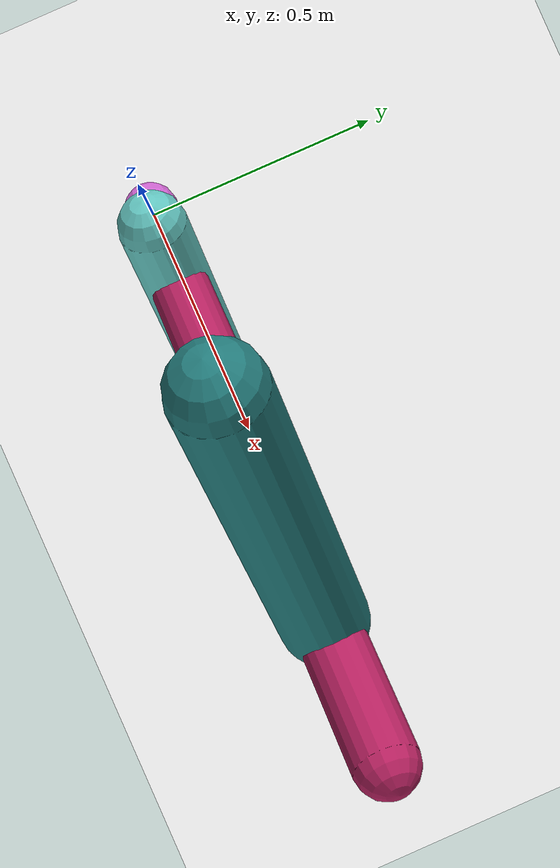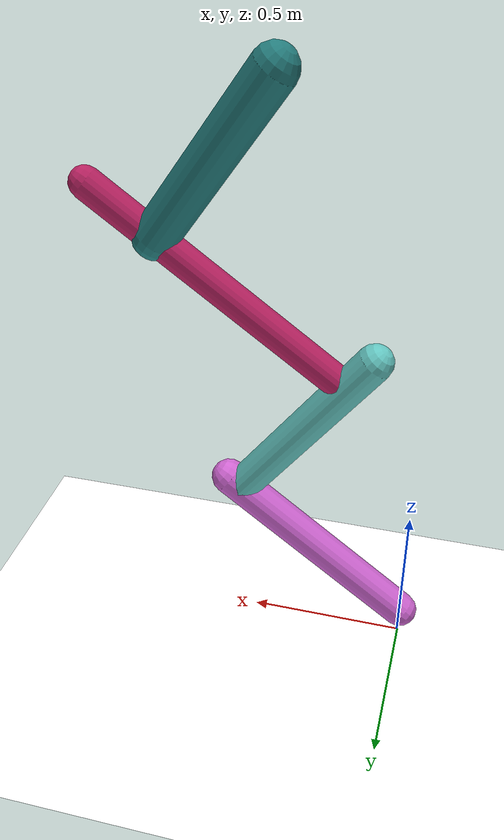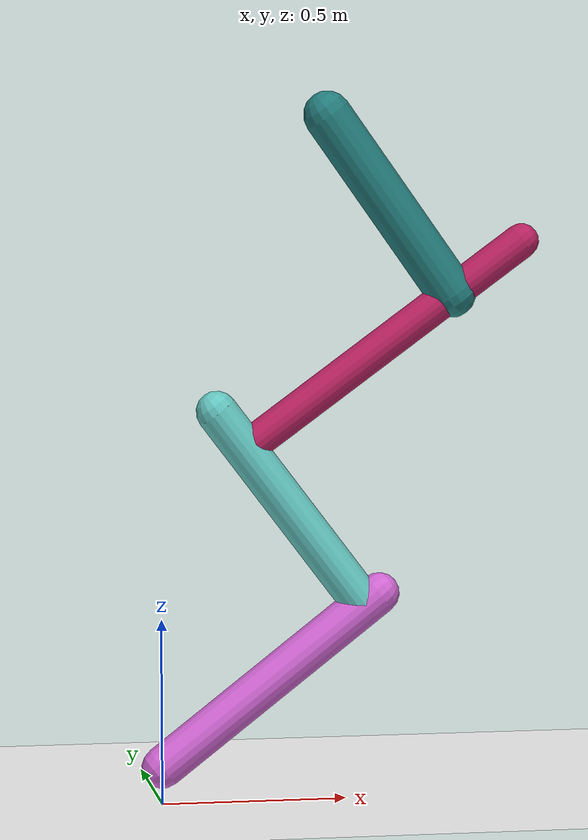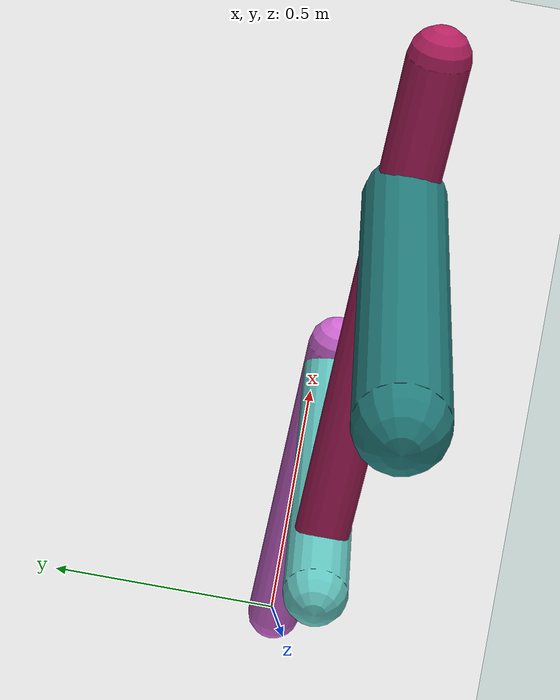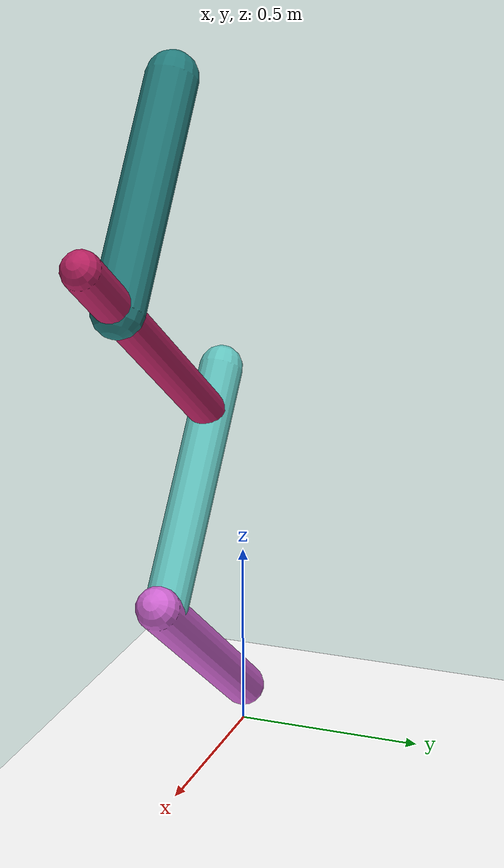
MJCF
<mujoco model="morphology">
  <option timestep="0.01"/>
  <default>
    <default class="/"/>
  </default>
  <asset>
    <texture name="texplane" type="2d" builtin="checker" rgb1="0.1 0.2 0.3" rgb2="0.2 0.3 0.4" width="300" height="300"/>
    <material name="MatPlane" class="/" texture="texplane" texrepeat="20 20" specular="1" shininess="1" reflectance="0.5"/>
  </asset>
  <worldbody>
    <light name="//unnamed_light_0" class="/" directional="true" pos="0 0 1.5" dir="0 0 -1.3" cutoff="1e+02" exponent="1" diffuse="1 1 1" specular="0.1 0.1 0.1"/>
    <geom name="ground" class="/" type="plane" size="15 15 0.5" material="MatPlane" rgba="1 1 1 1"/>
    <body name="body" pos="0 0 0.1">
      <geom name="geom0" class="/" type="capsule" contype="1" conaffinity="1" condim="3" size="0.057" rgba="0.82 0.4 0.83 1" friction="0.4 0.1 0.1" fromto="0 0 0 0.59 0 0.46"/>
      <body name="body1" pos="0.55 0 0.43">
        <geom name="geom1" class="/" type="capsule" contype="1" conaffinity="1" condim="3" size="0.056" rgba="0.39 0.78 0.76 1" friction="0.4 0.1 0.1" fromto="0 0 0 -0.4 0 0.53"/>
        <body name="body2" pos="-0.32 0 0.43">
          <geom name="geom2" class="/" type="capsule" contype="1" conaffinity="1" condim="3" size="0.048" rgba="0.72 0.13 0.38 1" friction="0.4 0.1 0.1" fromto="0 0 0 0.75 0 0.55"/>
          <body name="body3" pos="0.56 0 0.41">
            <geom name="geom3" class="/" type="capsule" contype="1" conaffinity="1" condim="3" size="0.065" rgba="0.14 0.49 0.49 1" friction="0.4 0.1 0.1" fromto="0 0 0 -0.34 0 0.48"/>
            <joint name="joint3" class="/" type="hinge" axis="0 1 0" limited="true" stiffness="20" range="-69 69" armature="0.1" damping="2"/>
          </body>
          <joint name="joint2" class="/" type="hinge" axis="0 1 0" limited="true" stiffness="20" range="-64 64" armature="0.1" damping="2"/>
        </body>
        <joint name="joint1" class="/" type="hinge" axis="0 1 0" limited="true" stiffness="20" range="-47 47" armature="0.1" damping="2"/>
      </body>
      <joint name="rootx" class="/" type="slide" axis="1 0 0" limited="false" stiffness="0" armature="0" damping="0"/>
      <joint name="rootz" class="/" type="slide" axis="0 0 1" limited="false" stiffness="0" armature="0" damping="0"/>
      <joint name="rooty" class="/" type="hinge" axis="0 1 0" limited="false" stiffness="0" armature="0" damping="0"/>
    </body>
  </worldbody>
  <actuator>
    <motor name="motor3" class="/" ctrllimited="true" ctrlrange="-1 1" gear="1.8e+02" joint="joint3"/>
    <motor name="motor2" class="/" ctrllimited="true" ctrlrange="-1 1" gear="1.9e+02" joint="joint2"/>
    <motor name="motor1" class="/" ctrllimited="true" ctrlrange="-1 1" gear="1.7e+02" joint="joint1"/>
  </actuator>
  <sensor>
    <subtreelinvel name="velocity" body="body"/>
  </sensor>
</mujoco>
